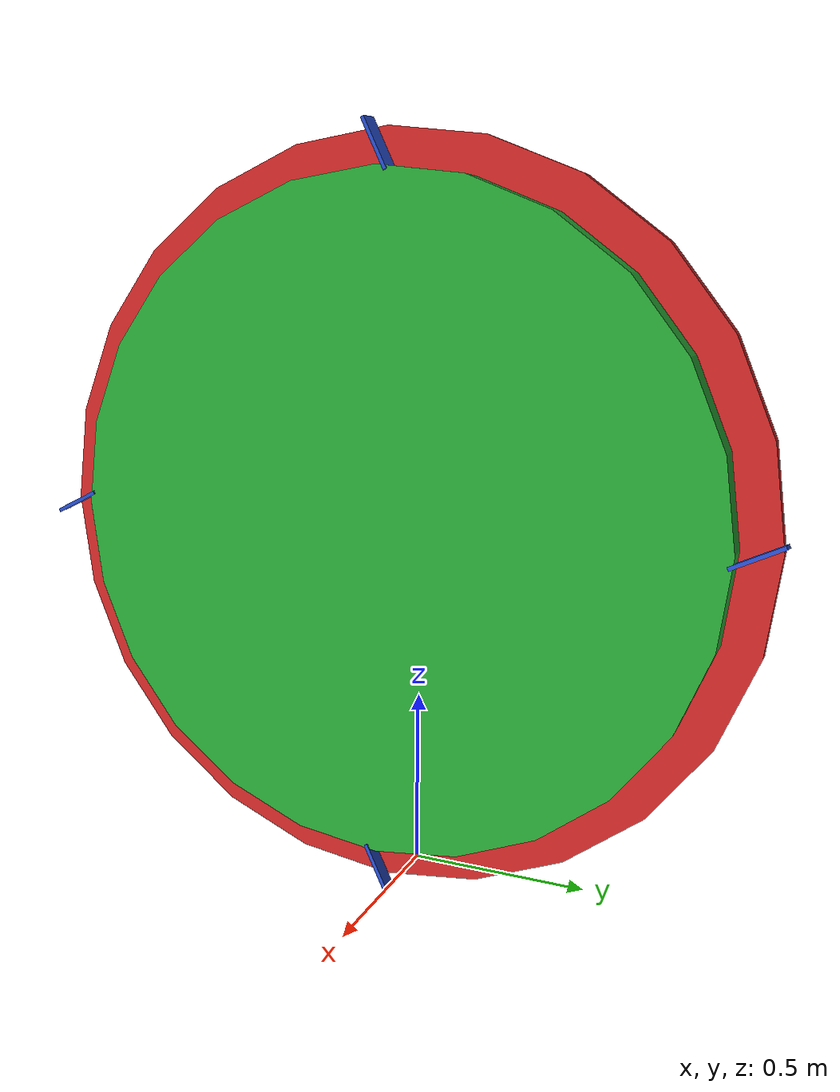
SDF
<?xml version="1.0" ?>
<sdf version="1.5">
  <model name="bucket_wheel">
    <link name="link">
      <pose>0.2 0 1.05 0 1.5707 0</pose>
      <inertial>
        <pose>0 0 0.025 0 0 0</pose>
        <mass>1.0</mass>
        <inertia>
          <ixx>0.2509</ixx>
          <ixy>0.0</ixy>
          <ixz>0.0</ixz>
          <iyy>0.2509</iyy>
          <iyz>0.0</iyz>
          <izz>0.5</izz>
        </inertia>
      </inertial>

      <collision name="collision_wheel">
        <geometry>
          <cylinder>
            <radius>1.0</radius>
            <length>0.04</length>
          </cylinder>
        </geometry>
      </collision>
      <visual name="visual_wheel">
        <geometry>
          <cylinder>
            <radius>1.0</radius>
            <length>0.04</length>
          </cylinder>
        </geometry>
        <material>
          <script>
            <uri>file://media/materials/scripts/gazebo.material</uri>
            <name>Gazebo/Red</name>
          </script>
        </material>
      </visual>

      <collision name="collision_inner_wheel">
        <pose>0 0 0.05 0 0 0</pose>
        <geometry>
          <cylinder>
            <radius>0.9</radius>
            <length>0.1</length>
          </cylinder>
        </geometry>
      </collision>
      <visual name="visual_inner_wheel">
        <pose>0 0 0.05 0 0 0</pose>
        <geometry>
          <cylinder>
            <radius>0.9</radius>
            <length>0.1</length>
          </cylinder>
        </geometry>
        <material>
          <script>
            <uri>file://media/materials/scripts/gazebo.material</uri>
            <name>Gazebo/Green</name>
          </script>
        </material>
      </visual>

      <collision name="collision_spoke1">
        <pose>0.95 0 0.08 -0.1 0 0.45</pose>
        <geometry>
          <box>
            <size>0.14 0.01 0.05</size>
          </box>
        </geometry>
      </collision>
      <visual name="visual_spoke1">
        <pose>0.95 0 0.08 -0.1 0 0.45</pose>
        <geometry>
          <box>
            <size>0.14 0.01 0.05</size>
          </box>
        </geometry>
        <material>
          <script>
            <uri>file://media/materials/scripts/gazebo.material</uri>
            <name>Gazebo/Blue</name>
          </script>
        </material>
      </visual>

      <collision name="collision_spoke2">
        <pose>-0.95 0 0.08 0.1 0 0.45</pose>
        <geometry>
          <box>
            <size>0.14 0.01 0.05</size>
          </box>
        </geometry>
      </collision>
      <visual name="visual_spoke2">
        <pose>-0.95 0 0.08 0.1 0 0.45</pose>
        <geometry>
          <box>
            <size>0.14 0.01 0.05</size>
          </box>
        </geometry>
        <material>
          <script>
            <uri>file://media/materials/scripts/gazebo.material</uri>
            <name>Gazebo/Blue</name>
          </script>
        </material>
      </visual>

      <collision name="collision_spoke3">
        <pose>0 0.95 0.08 -0.1 0 2.0207</pose>
        <geometry>
          <box>
            <size>0.14 0.01 0.05</size>
          </box>
        </geometry>
      </collision>
      <visual name="visual_spoke3">
        <pose>0 0.95 0.08 -0.1 0 2.0207</pose>
        <geometry>
          <box>
            <size>0.14 0.01 0.05</size>
          </box>
        </geometry>
        <material>
          <script>
            <uri>file://media/materials/scripts/gazebo.material</uri>
            <name>Gazebo/Blue</name>
          </script>
        </material>
      </visual>

      <collision name="collision_spoke4">
        <pose>0 -0.95 0.08 0.1 0 2.0207</pose>
        <geometry>
          <box>
            <size>0.14 0.01 0.05</size>
          </box>
        </geometry>
      </collision>
      <visual name="visual_spoke4">
        <pose>0 -0.95 0.08 0.1 0 2.0207</pose>
        <geometry>
          <box>
            <size>0.14 0.01 0.05</size>
          </box>
        </geometry>
        <material>
          <script>
            <uri>file://media/materials/scripts/gazebo.material</uri>
            <name>Gazebo/Blue</name>
          </script>
        </material>
      </visual>
    </link>

    <joint name="world_joint" type="revolute">
      <parent>world</parent>
      <child>link</child>
      <axis>
        <xyz>0 0 1</xyz>
        <limit>
          <lower>-1000000</lower>
          <upper>1000000</upper>
        </limit>
      </axis>
    </joint>

    <plugin filename="libWheelPlugin.so" name="wheel">
      <shaft_link>motor::motor_shaft_link</shaft_link>
      <body_link>bucket_wheel::link</body_link>
    </plugin>

  </model>
</sdf>
